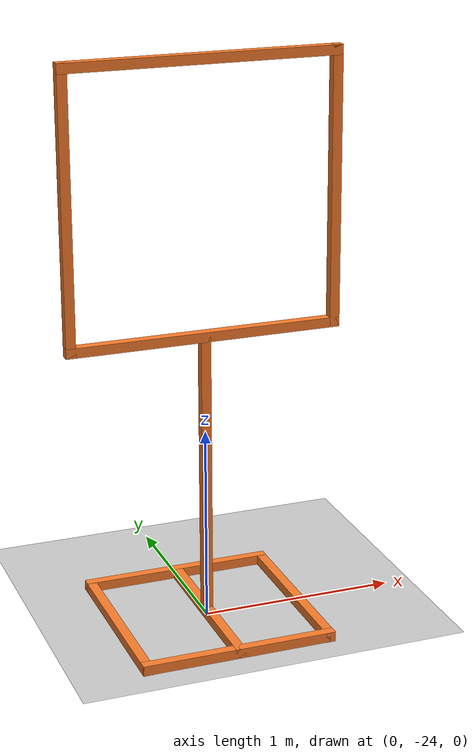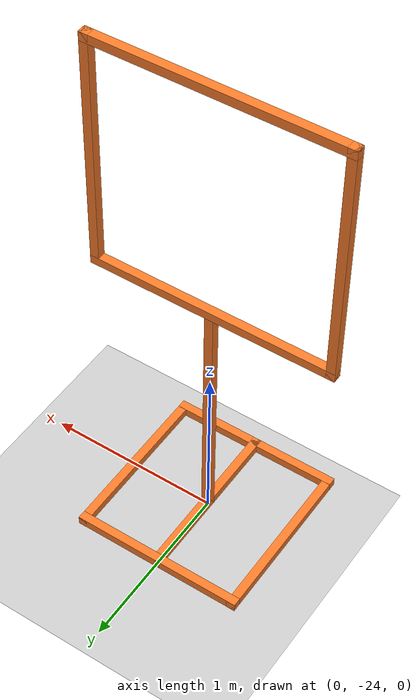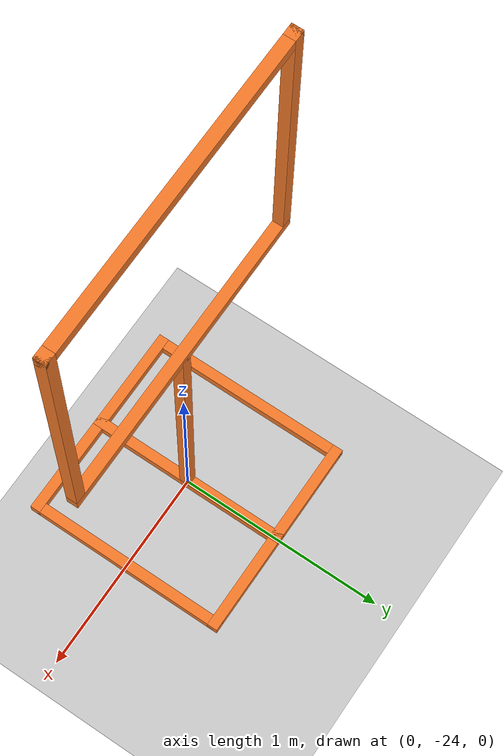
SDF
<sdf version="1.6">
 <world name="default">
  <model name="ground_plane">
   <static>1</static>
   <link name="link">
    <collision name="collision">
     <geometry><plane><normal>0 0 1</normal><size>100 100</size></plane></geometry>
     <surface><friction><ode><mu>100</mu><mu2>50</mu2></ode></friction></surface>
    </collision>
    <visual name="visual">
     <cast_shadows>0</cast_shadows>
     <geometry><plane><normal>0 0 1</normal><size>100 100</size></plane></geometry>
     <material>
      <script><uri>file://media/materials/scripts/gazebo.material</uri><name>Gazebo/Grey</name></script>
     </material>
    </visual>
    <velocity_decay><linear>0</linear><angular>0</angular></velocity_decay>
   </link>
  </model>
  <model name="adr2017_Small_Gate_8">
   <link name="link">
    <pose>0 0 0.75 0 -0 0</pose>
    <inertial>
     <mass>1</mass>
     <inertia>
      <ixx>0.166667</ixx>
      <ixy>0</ixy>
      <ixz>0</ixz>
      <iyy>0.166667</iyy>
      <iyz>0</iyz>
      <izz>0.166667</izz>
     </inertia>
    </inertial>
    <visual name="visual">
     <geometry><box><size>0.05 0.05 1.5</size></box></geometry>
     <material>
      <script><name>Gazebo/Grey</name><uri>file://media/materials/scripts/gazebo.material</uri></script>
      <shader type="vertex"><normal_map>__default__</normal_map></shader>
      <ambient>0.976 0.484 0.164 1</ambient>
      <diffuse>0.976 0.484 0.164 1</diffuse>
      <specular>0.01 0.01 0.01 1</specular>
      <emissive>0 0 0 1</emissive>
     </material>
    </visual>
    <collision name="collision">
     <geometry><box><size>0.05 0.05 1.5</size></box></geometry>
     <surface>
      <friction>
       <ode><mu>1</mu><mu2>1</mu2><fdir1>0 0 0</fdir1><slip1>0</slip1><slip2>0</slip2></ode>
       <torsional>
        <coefficient>1</coefficient>
        <patch_radius>0</patch_radius>
        <surface_radius>0</surface_radius>
        <use_patch_radius>1</use_patch_radius>
        <ode><slip>0</slip></ode>
       </torsional>
      </friction>
      <bounce><restitution_coefficient>0</restitution_coefficient><threshold>1e+06</threshold></bounce>
      <contact>
       <collide_without_contact>0</collide_without_contact>
       <collide_without_contact_bitmask>1</collide_without_contact_bitmask>
       <collide_bitmask>1</collide_bitmask>
       <ode>
        <soft_cfm>0</soft_cfm>
        <soft_erp>0.2</soft_erp>
        <kp>1e+13</kp>
        <kd>1</kd>
        <max_vel>0.01</max_vel>
        <min_depth>0</min_depth>
       </ode>
       <bullet>
        <split_impulse>1</split_impulse>
        <split_impulse_penetration_threshold>-0.01</split_impulse_penetration_threshold>
        <soft_cfm>0</soft_cfm>
        <soft_erp>0.2</soft_erp>
        <kp>1e+13</kp>
        <kd>1</kd>
       </bullet>
      </contact>
     </surface>
    </collision>
   </link>
   <link name="link_2">
    <pose>0 0 0.025 0 -0 0</pose>
    <inertial>
     <mass>1</mass>
     <inertia>
      <ixx>0.166667</ixx>
      <ixy>0</ixy>
      <ixz>0</ixz>
      <iyy>0.166667</iyy>
      <iyz>0</iyz>
      <izz>0.166667</izz>
     </inertia>
    </inertial>
    <visual name="visual">
     <geometry><box><size>0.05 1 0.05</size></box></geometry>
     <material>
      <script><name>Gazebo/Grey</name><uri>file://media/materials/scripts/gazebo.material</uri></script>
      <shader type="vertex"><normal_map>__default__</normal_map></shader>
      <ambient>0.976 0.484 0.164 1</ambient>
      <diffuse>0.976 0.484 0.164 1</diffuse>
      <specular>0.01 0.01 0.01 1</specular>
      <emissive>0 0 0 1</emissive>
     </material>
    </visual>
    <collision name="collision">
     <geometry><box><size>0.05 1 0.05</size></box></geometry>
     <surface>
      <friction>
       <ode><mu>1</mu><mu2>1</mu2><fdir1>0 0 0</fdir1><slip1>0</slip1><slip2>0</slip2></ode>
       <torsional>
        <coefficient>1</coefficient>
        <patch_radius>0</patch_radius>
        <surface_radius>0</surface_radius>
        <use_patch_radius>1</use_patch_radius>
        <ode><slip>0</slip></ode>
       </torsional>
      </friction>
      <bounce><restitution_coefficient>0</restitution_coefficient><threshold>1e+06</threshold></bounce>
      <contact>
       <collide_without_contact>0</collide_without_contact>
       <collide_without_contact_bitmask>1</collide_without_contact_bitmask>
       <collide_bitmask>1</collide_bitmask>
       <ode>
        <soft_cfm>0</soft_cfm>
        <soft_erp>0.2</soft_erp>
        <kp>1e+13</kp>
        <kd>1</kd>
        <max_vel>0.01</max_vel>
        <min_depth>0</min_depth>
       </ode>
       <bullet>
        <split_impulse>1</split_impulse>
        <split_impulse_penetration_threshold>-0.01</split_impulse_penetration_threshold>
        <soft_cfm>0</soft_cfm>
        <soft_erp>0.2</soft_erp>
        <kp>1e+13</kp>
        <kd>1</kd>
       </bullet>
      </contact>
     </surface>
    </collision>
   </link>
   <link name="link_3">
    <pose>0.475 0 0.024 0 -0 0</pose>
    <inertial>
     <mass>1</mass>
     <inertia>
      <ixx>0.166667</ixx>
      <ixy>0</ixy>
      <ixz>0</ixz>
      <iyy>0.166667</iyy>
      <iyz>0</iyz>
      <izz>0.166667</izz>
     </inertia>
    </inertial>
    <visual name="visual">
     <geometry><box><size>0.05 1 0.05</size></box></geometry>
     <material>
      <script><name>Gazebo/Grey</name><uri>file://media/materials/scripts/gazebo.material</uri></script>
      <shader type="vertex"><normal_map>__default__</normal_map></shader>
      <ambient>0.976 0.484 0.164 1</ambient>
      <diffuse>0.976 0.484 0.164 1</diffuse>
      <specular>0.01 0.01 0.01 1</specular>
      <emissive>0 0 0 1</emissive>
     </material>
    </visual>
    <collision name="collision">
     <geometry><box><size>0.05 1 0.05</size></box></geometry>
     <surface>
      <friction>
       <ode><mu>1</mu><mu2>1</mu2><fdir1>0 0 0</fdir1><slip1>0</slip1><slip2>0</slip2></ode>
       <torsional>
        <coefficient>1</coefficient>
        <patch_radius>0</patch_radius>
        <surface_radius>0</surface_radius>
        <use_patch_radius>1</use_patch_radius>
        <ode><slip>0</slip></ode>
       </torsional>
      </friction>
      <bounce><restitution_coefficient>0</restitution_coefficient><threshold>1e+06</threshold></bounce>
      <contact>
       <collide_without_contact>0</collide_without_contact>
       <collide_without_contact_bitmask>1</collide_without_contact_bitmask>
       <collide_bitmask>1</collide_bitmask>
       <ode>
        <soft_cfm>0</soft_cfm>
        <soft_erp>0.2</soft_erp>
        <kp>1e+13</kp>
        <kd>1</kd>
        <max_vel>0.01</max_vel>
        <min_depth>0</min_depth>
       </ode>
       <bullet>
        <split_impulse>1</split_impulse>
        <split_impulse_penetration_threshold>-0.01</split_impulse_penetration_threshold>
        <soft_cfm>0</soft_cfm>
        <soft_erp>0.2</soft_erp>
        <kp>1e+13</kp>
        <kd>1</kd>
       </bullet>
      </contact>
     </surface>
    </collision>
   </link>
   <link name="link_4">
    <pose>-0.475 0 0.024 0 -0 0</pose>
    <inertial>
     <mass>1</mass>
     <inertia>
      <ixx>0.166667</ixx>
      <ixy>0</ixy>
      <ixz>0</ixz>
      <iyy>0.166667</iyy>
      <iyz>0</iyz>
      <izz>0.166667</izz>
     </inertia>
    </inertial>
    <visual name="visual">
     <geometry><box><size>0.05 1 0.05</size></box></geometry>
     <material>
      <script><name>Gazebo/Grey</name><uri>file://media/materials/scripts/gazebo.material</uri></script>
      <shader type="vertex"><normal_map>__default__</normal_map></shader>
      <ambient>0.976 0.484 0.164 1</ambient>
      <diffuse>0.976 0.484 0.164 1</diffuse>
      <specular>0.01 0.01 0.01 1</specular>
      <emissive>0 0 0 1</emissive>
     </material>
    </visual>
    <collision name="collision">
     <geometry><box><size>0.05 1 0.05</size></box></geometry>
     <surface>
      <friction>
       <ode><mu>1</mu><mu2>1</mu2><fdir1>0 0 0</fdir1><slip1>0</slip1><slip2>0</slip2></ode>
       <torsional>
        <coefficient>1</coefficient>
        <patch_radius>0</patch_radius>
        <surface_radius>0</surface_radius>
        <use_patch_radius>1</use_patch_radius>
        <ode><slip>0</slip></ode>
       </torsional>
      </friction>
      <bounce><restitution_coefficient>0</restitution_coefficient><threshold>1e+06</threshold></bounce>
      <contact>
       <collide_without_contact>0</collide_without_contact>
       <collide_without_contact_bitmask>1</collide_without_contact_bitmask>
       <collide_bitmask>1</collide_bitmask>
       <ode>
        <soft_cfm>0</soft_cfm>
        <soft_erp>0.2</soft_erp>
        <kp>1e+13</kp>
        <kd>1</kd>
        <max_vel>0.01</max_vel>
        <min_depth>0</min_depth>
       </ode>
       <bullet>
        <split_impulse>1</split_impulse>
        <split_impulse_penetration_threshold>-0.01</split_impulse_penetration_threshold>
        <soft_cfm>0</soft_cfm>
        <soft_erp>0.2</soft_erp>
        <kp>1e+13</kp>
        <kd>1</kd>
       </bullet>
      </contact>
     </surface>
    </collision>
   </link>
   <link name="link_5">
    <pose>0 0.475 0.025 0 -0 0</pose>
    <inertial>
     <mass>1</mass>
     <inertia>
      <ixx>0.166667</ixx>
      <ixy>0</ixy>
      <ixz>0</ixz>
      <iyy>0.166667</iyy>
      <iyz>0</iyz>
      <izz>0.166667</izz>
     </inertia>
    </inertial>
    <visual name="visual">
     <geometry><box><size>1 0.05 0.05</size></box></geometry>
     <material>
      <script><name>Gazebo/Grey</name><uri>file://media/materials/scripts/gazebo.material</uri></script>
      <shader type="vertex"><normal_map>__default__</normal_map></shader>
      <ambient>0.976 0.484 0.164 1</ambient>
      <diffuse>0.976 0.484 0.164 1</diffuse>
      <specular>0.01 0.01 0.01 1</specular>
      <emissive>0 0 0 1</emissive>
     </material>
    </visual>
    <collision name="collision">
     <geometry><box><size>1 0.05 0.05</size></box></geometry>
     <surface>
      <friction>
       <ode><mu>1</mu><mu2>1</mu2><fdir1>0 0 0</fdir1><slip1>0</slip1><slip2>0</slip2></ode>
       <torsional>
        <coefficient>1</coefficient>
        <patch_radius>0</patch_radius>
        <surface_radius>0</surface_radius>
        <use_patch_radius>1</use_patch_radius>
        <ode><slip>0</slip></ode>
       </torsional>
      </friction>
      <bounce><restitution_coefficient>0</restitution_coefficient><threshold>1e+06</threshold></bounce>
      <contact>
       <collide_without_contact>0</collide_without_contact>
       <collide_without_contact_bitmask>1</collide_without_contact_bitmask>
       <collide_bitmask>1</collide_bitmask>
       <ode>
        <soft_cfm>0</soft_cfm>
        <soft_erp>0.2</soft_erp>
        <kp>1e+13</kp>
        <kd>1</kd>
        <max_vel>0.01</max_vel>
        <min_depth>0</min_depth>
       </ode>
       <bullet>
        <split_impulse>1</split_impulse>
        <split_impulse_penetration_threshold>-0.01</split_impulse_penetration_threshold>
        <soft_cfm>0</soft_cfm>
        <soft_erp>0.2</soft_erp>
        <kp>1e+13</kp>
        <kd>1</kd>
       </bullet>
      </contact>
     </surface>
    </collision>
   </link>
   <link name="link_6">
    <pose>0 -0.475 0.025 0 -0 0</pose>
    <inertial>
     <mass>1</mass>
     <inertia>
      <ixx>0.166667</ixx>
      <ixy>0</ixy>
      <ixz>0</ixz>
      <iyy>0.166667</iyy>
      <iyz>0</iyz>
      <izz>0.166667</izz>
     </inertia>
    </inertial>
    <visual name="visual">
     <geometry><box><size>1 0.05 0.05</size></box></geometry>
     <material>
      <script><name>Gazebo/Grey</name><uri>file://media/materials/scripts/gazebo.material</uri></script>
      <shader type="vertex"><normal_map>__default__</normal_map></shader>
      <ambient>0.976 0.484 0.164 1</ambient>
      <diffuse>0.976 0.484 0.164 1</diffuse>
      <specular>0.01 0.01 0.01 1</specular>
      <emissive>0 0 0 1</emissive>
     </material>
    </visual>
    <collision name="collision">
     <geometry><box><size>1 0.05 0.05</size></box></geometry>
     <surface>
      <friction>
       <ode><mu>1</mu><mu2>1</mu2><fdir1>0 0 0</fdir1><slip1>0</slip1><slip2>0</slip2></ode>
       <torsional>
        <coefficient>1</coefficient>
        <patch_radius>0</patch_radius>
        <surface_radius>0</surface_radius>
        <use_patch_radius>1</use_patch_radius>
        <ode><slip>0</slip></ode>
       </torsional>
      </friction>
      <bounce><restitution_coefficient>0</restitution_coefficient><threshold>1e+06</threshold></bounce>
      <contact>
       <collide_without_contact>0</collide_without_contact>
       <collide_without_contact_bitmask>1</collide_without_contact_bitmask>
       <collide_bitmask>1</collide_bitmask>
       <ode>
        <soft_cfm>0</soft_cfm>
        <soft_erp>0.2</soft_erp>
        <kp>1e+13</kp>
        <kd>1</kd>
        <max_vel>0.01</max_vel>
        <min_depth>0</min_depth>
       </ode>
       <bullet>
        <split_impulse>1</split_impulse>
        <split_impulse_penetration_threshold>-0.01</split_impulse_penetration_threshold>
        <soft_cfm>0</soft_cfm>
        <soft_erp>0.2</soft_erp>
        <kp>1e+13</kp>
        <kd>1</kd>
       </bullet>
      </contact>
     </surface>
    </collision>
   </link>
   <link name="link_7">
    <pose>0 0 2.85 0 -0 0</pose>
    <inertial>
     <mass>1</mass>
     <inertia>
      <ixx>0.166667</ixx>
      <ixy>0</ixy>
      <ixz>0</ixz>
      <iyy>0.166667</iyy>
      <iyz>0</iyz>
      <izz>0.166667</izz>
     </inertia>
    </inertial>
    <visual name="visual">
     <geometry><box><size>1.4 0.05 0.05</size></box></geometry>
     <material>
      <script><name>Gazebo/Grey</name><uri>file://media/materials/scripts/gazebo.material</uri></script>
      <shader type="vertex"><normal_map>__default__</normal_map></shader>
      <ambient>0.976 0.484 0.164 1</ambient>
      <diffuse>0.976 0.484 0.164 1</diffuse>
      <specular>0.01 0.01 0.01 1</specular>
      <emissive>0 0 0 1</emissive>
     </material>
    </visual>
    <collision name="collision">
     <geometry><box><size>1.4 0.05 0.05</size></box></geometry>
     <surface>
      <friction>
       <ode><mu>1</mu><mu2>1</mu2><fdir1>0 0 0</fdir1><slip1>0</slip1><slip2>0</slip2></ode>
       <torsional>
        <coefficient>1</coefficient>
        <patch_radius>0</patch_radius>
        <surface_radius>0</surface_radius>
        <use_patch_radius>1</use_patch_radius>
        <ode><slip>0</slip></ode>
       </torsional>
      </friction>
      <bounce><restitution_coefficient>0</restitution_coefficient><threshold>1e+06</threshold></bounce>
      <contact>
       <collide_without_contact>0</collide_without_contact>
       <collide_without_contact_bitmask>1</collide_without_contact_bitmask>
       <collide_bitmask>1</collide_bitmask>
       <ode>
        <soft_cfm>0</soft_cfm>
        <soft_erp>0.2</soft_erp>
        <kp>1e+13</kp>
        <kd>1</kd>
        <max_vel>0.01</max_vel>
        <min_depth>0</min_depth>
       </ode>
       <bullet>
        <split_impulse>1</split_impulse>
        <split_impulse_penetration_threshold>-0.01</split_impulse_penetration_threshold>
        <soft_cfm>0</soft_cfm>
        <soft_erp>0.2</soft_erp>
        <kp>1e+13</kp>
        <kd>1</kd>
       </bullet>
      </contact>
     </surface>
    </collision>
   </link>
   <link name="link_8">
    <pose>0 0 1.5 0 -0 0</pose>
    <inertial>
     <mass>1</mass>
     <inertia>
      <ixx>0.166667</ixx>
      <ixy>0</ixy>
      <ixz>0</ixz>
      <iyy>0.166667</iyy>
      <iyz>0</iyz>
      <izz>0.166667</izz>
     </inertia>
    </inertial>
    <visual name="visual">
     <geometry><box><size>1.4 0.05 0.05</size></box></geometry>
     <material>
      <script><name>Gazebo/Grey</name><uri>file://media/materials/scripts/gazebo.material</uri></script>
      <shader type="vertex"><normal_map>__default__</normal_map></shader>
      <ambient>0.976 0.484 0.164 1</ambient>
      <diffuse>0.976 0.484 0.164 1</diffuse>
      <specular>0.01 0.01 0.01 1</specular>
      <emissive>0 0 0 1</emissive>
     </material>
    </visual>
    <collision name="collision">
     <geometry><box><size>1.4 0.05 0.05</size></box></geometry>
     <surface>
      <friction>
       <ode><mu>1</mu><mu2>1</mu2><fdir1>0 0 0</fdir1><slip1>0</slip1><slip2>0</slip2></ode>
       <torsional>
        <coefficient>1</coefficient>
        <patch_radius>0</patch_radius>
        <surface_radius>0</surface_radius>
        <use_patch_radius>1</use_patch_radius>
        <ode><slip>0</slip></ode>
       </torsional>
      </friction>
      <bounce><restitution_coefficient>0</restitution_coefficient><threshold>1e+06</threshold></bounce>
      <contact>
       <collide_without_contact>0</collide_without_contact>
       <collide_without_contact_bitmask>1</collide_without_contact_bitmask>
       <collide_bitmask>1</collide_bitmask>
       <ode>
        <soft_cfm>0</soft_cfm>
        <soft_erp>0.2</soft_erp>
        <kp>1e+13</kp>
        <kd>1</kd>
        <max_vel>0.01</max_vel>
        <min_depth>0</min_depth>
       </ode>
       <bullet>
        <split_impulse>1</split_impulse>
        <split_impulse_penetration_threshold>-0.01</split_impulse_penetration_threshold>
        <soft_cfm>0</soft_cfm>
        <soft_erp>0.2</soft_erp>
        <kp>1e+13</kp>
        <kd>1</kd>
       </bullet>
      </contact>
     </surface>
    </collision>
   </link>
   <link name="link_9">
    <pose>-0.675 0 1.475 0 -0 0</pose>
    <inertial>
     <mass>1</mass>
     <inertia>
      <ixx>0.166667</ixx>
      <ixy>0</ixy>
      <ixz>0</ixz>
      <iyy>0.166667</iyy>
      <iyz>0</iyz>
      <izz>0.166667</izz>
     </inertia>
    </inertial>
    <visual name="visual">
     <geometry><box><size>0.05 0.05 1.4</size></box></geometry>
     <material>
      <script><name>Gazebo/Grey</name><uri>file://media/materials/scripts/gazebo.material</uri></script>
      <shader type="vertex"><normal_map>__default__</normal_map></shader>
      <ambient>0.976 0.484 0.164 1</ambient>
      <diffuse>0.976 0.484 0.164 1</diffuse>
      <specular>0.01 0.01 0.01 1</specular>
      <emissive>0 0 0 1</emissive>
     </material>
     <pose>0 0 0.7 0 -0 0</pose>
    </visual>
    <collision name="collision">
     <pose>0 0 0.7 0 -0 0</pose>
     <geometry><box><size>0.05 0.05 1.4</size></box></geometry>
     <surface>
      <friction>
       <ode><mu>1</mu><mu2>1</mu2><fdir1>0 0 0</fdir1><slip1>0</slip1><slip2>0</slip2></ode>
       <torsional>
        <coefficient>1</coefficient>
        <patch_radius>0</patch_radius>
        <surface_radius>0</surface_radius>
        <use_patch_radius>1</use_patch_radius>
        <ode><slip>0</slip></ode>
       </torsional>
      </friction>
      <bounce><restitution_coefficient>0</restitution_coefficient><threshold>1e+06</threshold></bounce>
      <contact>
       <collide_without_contact>0</collide_without_contact>
       <collide_without_contact_bitmask>1</collide_without_contact_bitmask>
       <collide_bitmask>1</collide_bitmask>
       <ode>
        <soft_cfm>0</soft_cfm>
        <soft_erp>0.2</soft_erp>
        <kp>1e+13</kp>
        <kd>1</kd>
        <max_vel>0.01</max_vel>
        <min_depth>0</min_depth>
       </ode>
       <bullet>
        <split_impulse>1</split_impulse>
        <split_impulse_penetration_threshold>-0.01</split_impulse_penetration_threshold>
        <soft_cfm>0</soft_cfm>
        <soft_erp>0.2</soft_erp>
        <kp>1e+13</kp>
        <kd>1</kd>
       </bullet>
      </contact>
     </surface>
    </collision>
   </link>
   <link name="link_10">
    <pose>0.675 0 1.475 0 -0 0</pose>
    <inertial>
     <mass>1</mass>
     <inertia>
      <ixx>0.166667</ixx>
      <ixy>0</ixy>
      <ixz>0</ixz>
      <iyy>0.166667</iyy>
      <iyz>0</iyz>
      <izz>0.166667</izz>
     </inertia>
    </inertial>
    <visual name="visual">
     <geometry><box><size>0.05 0.05 1.4</size></box></geometry>
     <material>
      <script><name>Gazebo/Grey</name><uri>file://media/materials/scripts/gazebo.material</uri></script>
      <shader type="vertex"><normal_map>__default__</normal_map></shader>
      <ambient>0.976 0.484 0.164 1</ambient>
      <diffuse>0.976 0.484 0.164 1</diffuse>
      <specular>0.01 0.01 0.01 1</specular>
      <emissive>0 0 0 1</emissive>
     </material>
     <pose>0 0 0.7 0 -0 0</pose>
    </visual>
    <collision name="collision">
     <pose>0 0 0.7 0 -0 0</pose>
     <geometry><box><size>0.05 0.05 1.4</size></box></geometry>
     <surface>
      <friction>
       <ode><mu>1</mu><mu2>1</mu2><fdir1>0 0 0</fdir1><slip1>0</slip1><slip2>0</slip2></ode>
       <torsional>
        <coefficient>1</coefficient>
        <patch_radius>0</patch_radius>
        <surface_radius>0</surface_radius>
        <use_patch_radius>1</use_patch_radius>
        <ode><slip>0</slip></ode>
       </torsional>
      </friction>
      <bounce><restitution_coefficient>0</restitution_coefficient><threshold>1e+06</threshold></bounce>
      <contact>
       <collide_without_contact>0</collide_without_contact>
       <collide_without_contact_bitmask>1</collide_without_contact_bitmask>
       <collide_bitmask>1</collide_bitmask>
       <ode>
        <soft_cfm>0</soft_cfm>
        <soft_erp>0.2</soft_erp>
        <kp>1e+13</kp>
        <kd>1</kd>
        <max_vel>0.01</max_vel>
        <min_depth>0</min_depth>
       </ode>
       <bullet>
        <split_impulse>1</split_impulse>
        <split_impulse_penetration_threshold>-0.01</split_impulse_penetration_threshold>
        <soft_cfm>0</soft_cfm>
        <soft_erp>0.2</soft_erp>
        <kp>1e+13</kp>
        <kd>1</kd>
       </bullet>
      </contact>
     </surface>
    </collision>
   </link>
   <static>1</static>
   <pose>0 -24 0 0 -0 0</pose>
  </model>
 </world>
</sdf>
